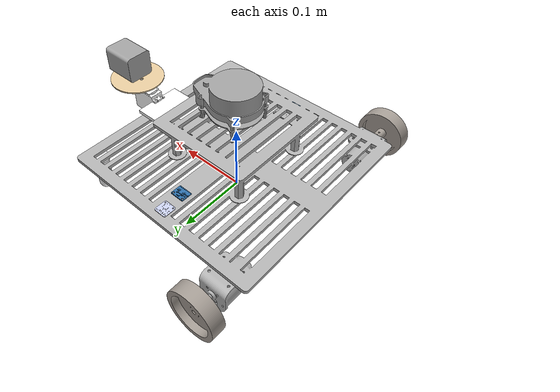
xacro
<?xml version="1.0" ?>
<robot name="test_robot" xmlns:xacro="http://www.ros.org/wiki/xacro">

<xacro:include filename="$(find test_robot_description)/urdf/materials.xacro" />
<xacro:include filename="$(find test_robot_description)/urdf/test_robot.trans" />
<xacro:include filename="$(find test_robot_description)/urdf/test_robot.gazebo" />
<link name="base_link">
  <inertial>
    <origin xyz="-0.017478616142263866 -0.0026167214840721615 0.07232033801694401" rpy="0 0 0"/>
    <mass value="1.7085553050360842"/>
    <inertia ixx="0.01599" iyy="0.013053" izz="0.025491" ixy="1e-06" iyz="0.0" ixz="-0.001461"/>
  </inertial>
  <visual>
    <origin xyz="0 0 0" rpy="0 0 0"/>
    <geometry>
      <mesh filename="package://test_robot_description/meshes/base_link.stl" scale="0.001 0.001 0.001"/>
    </geometry>
    <material name="silver_default"/>
  </visual>
  <collision>
    <origin xyz="0 0 0" rpy="0 0 0"/>
    <geometry>
      <mesh filename="package://test_robot_description/meshes/base_link.stl" scale="0.001 0.001 0.001"/>
    </geometry>
  </collision>
</link>

<link name="right_wheel_1">
  <inertial>
    <origin xyz="2.1362899985111206e-07 -0.007315609570886977 -4.197731875744959e-06" rpy="0 0 0"/>
    <mass value="0.04524129578745742"/>
    <inertia ixx="2.1e-05" iyy="3.8e-05" izz="2.1e-05" ixy="-0.0" iyz="0.0" ixz="-0.0"/>
  </inertial>
  <visual>
    <origin xyz="0.113229 0.188571 -0.035" rpy="0 0 0"/>
    <geometry>
      <mesh filename="package://test_robot_description/meshes/right_wheel_1.stl" scale="0.001 0.001 0.001"/>
    </geometry>
    <material name="opaque166158150"/>
  </visual>
  <collision>
    <origin xyz="0.113229 0.188571 -0.035" rpy="0 0 0"/>
    <geometry>
      <mesh filename="package://test_robot_description/meshes/right_wheel_1.stl" scale="0.001 0.001 0.001"/>
    </geometry>
  </collision>
</link>

<link name="left_wheel_1">
  <inertial>
    <origin xyz="-1.0235613107090202e-07 0.0073161666027419525 3.864337691943109e-06" rpy="0 0 0"/>
    <mass value="0.04524129578745742"/>
    <inertia ixx="2.1e-05" iyy="3.8e-05" izz="2.1e-05" ixy="0.0" iyz="0.0" ixz="0.0"/>
  </inertial>
  <visual>
    <origin xyz="0.113264 -0.183337 -0.035" rpy="0 0 0"/>
    <geometry>
      <mesh filename="package://test_robot_description/meshes/left_wheel_1.stl" scale="0.001 0.001 0.001"/>
    </geometry>
    <material name="opaque166158150"/>
  </visual>
  <collision>
    <origin xyz="0.113264 -0.183337 -0.035" rpy="0 0 0"/>
    <geometry>
      <mesh filename="package://test_robot_description/meshes/left_wheel_1.stl" scale="0.001 0.001 0.001"/>
    </geometry>
  </collision>
</link>

<link name="left_castor_1">
  <inertial>
    <origin xyz="-0.015000444363654358 -0.01999972148407214 -0.025454061421393268" rpy="0 0 0"/>
    <mass value="0.04403091329657134"/>
    <inertia ixx="1.1e-05" iyy="1.1e-05" izz="2e-06" ixy="0.0" iyz="-0.0" ixz="0.0"/>
  </inertial>
  <visual>
    <origin xyz="-0.150554 -0.144783 -0.05468" rpy="0 0 0"/>
    <geometry>
      <mesh filename="package://test_robot_description/meshes/left_castor_1.stl" scale="0.001 0.001 0.001"/>
    </geometry>
    <material name="aluminum_satin"/>
  </visual>
  <collision>
    <origin xyz="-0.150554 -0.144783 -0.05468" rpy="0 0 0"/>
    <geometry>
      <mesh filename="package://test_robot_description/meshes/left_castor_1.stl" scale="0.001 0.001 0.001"/>
    </geometry>
  </collision>
</link>

<link name="right_castor_1">
  <inertial>
    <origin xyz="-0.015000444363654053 0.02000027851592795 -0.02545406142139353" rpy="0 0 0"/>
    <mass value="0.04403091329657134"/>
    <inertia ixx="1.1e-05" iyy="1.1e-05" izz="2e-06" ixy="-0.0" iyz="0.0" ixz="0.0"/>
  </inertial>
  <visual>
    <origin xyz="-0.150554 0.150017 -0.05468" rpy="0 0 0"/>
    <geometry>
      <mesh filename="package://test_robot_description/meshes/right_castor_1.stl" scale="0.001 0.001 0.001"/>
    </geometry>
    <material name="aluminum_satin"/>
  </visual>
  <collision>
    <origin xyz="-0.150554 0.150017 -0.05468" rpy="0 0 0"/>
    <geometry>
      <mesh filename="package://test_robot_description/meshes/right_castor_1.stl" scale="0.001 0.001 0.001"/>
    </geometry>
  </collision>
</link>

<link name="ydlidar_x4_1">
  <inertial>
    <origin xyz="0.008293655206743676 2.7851592755744406e-07 0.03420114222279125" rpy="0 0 0"/>
    <mass value="1.1515616542314233"/>
    <inertia ixx="0.000489" iyy="0.000861" izz="0.000987" ixy="-0.0" iyz="-0.0" ixz="0.000148"/>
  </inertial>
  <visual>
    <origin xyz="-0.003154 0.002617 -0.11668" rpy="0 0 0"/>
    <geometry>
      <mesh filename="package://test_robot_description/meshes/ydlidar_x4_1.stl" scale="0.001 0.001 0.001"/>
    </geometry>
    <material name="steel_satin"/>
  </visual>
  <collision>
    <origin xyz="-0.003154 0.002617 -0.11668" rpy="0 0 0"/>
    <geometry>
      <mesh filename="package://test_robot_description/meshes/ydlidar_x4_1.stl" scale="0.001 0.001 0.001"/>
    </geometry>
  </collision>
</link>

<link name="servo_mount_1">
  <inertial>
    <origin xyz="0.02281000003141173 2.76966477701264e-07 -0.002692668094140295" rpy="0 0 0"/>
    <mass value="0.28990445760104805"/>
    <inertia ixx="5.9e-05" iyy="0.00017" izz="0.000152" ixy="0.0" iyz="-0.0" ixz="6e-06"/>
  </inertial>
  <visual>
    <origin xyz="-0.155554 0.002617 -0.05968" rpy="0 0 0"/>
    <geometry>
      <mesh filename="package://test_robot_description/meshes/servo_mount_1.stl" scale="0.001 0.001 0.001"/>
    </geometry>
    <material name="acrylic_clear"/>
  </visual>
  <collision>
    <origin xyz="-0.155554 0.002617 -0.05968" rpy="0 0 0"/>
    <geometry>
      <mesh filename="package://test_robot_description/meshes/servo_mount_1.stl" scale="0.001 0.001 0.001"/>
    </geometry>
  </collision>
</link>

<link name="camera_mount_1">
  <inertial>
    <origin xyz="0.009999555636422408 2.7851592789528146e-07 0.0029999999999999333" rpy="0 0 0"/>
    <mass value="0.012966923677691866"/>
    <inertia ixx="5e-06" iyy="5e-06" izz="1e-05" ixy="0.0" iyz="-0.0" ixz="0.0"/>
  </inertial>
  <visual>
    <origin xyz="-0.193704 0.002617 -0.08223" rpy="0 0 0"/>
    <geometry>
      <mesh filename="package://test_robot_description/meshes/camera_mount_1.stl" scale="0.001 0.001 0.001"/>
    </geometry>
    <material name="paek_beige"/>
  </visual>
  <collision>
    <origin xyz="-0.193704 0.002617 -0.08223" rpy="0 0 0"/>
    <geometry>
      <mesh filename="package://test_robot_description/meshes/camera_mount_1.stl" scale="0.001 0.001 0.001"/>
    </geometry>
  </collision>
</link>

<link name="camera_1">
  <inertial>
    <origin xyz="0.003869648083968641 2.7851593102558997e-07 0.022445900256365517" rpy="0 0 0"/>
    <mass value="0.6054290756769216"/>
    <inertia ixx="0.000158" iyy="0.000199" izz="0.000199" ixy="-0.0" iyz="0.0" ixz="-0.0"/>
  </inertial>
  <visual>
    <origin xyz="-0.213704 0.002617 -0.08623" rpy="0 0 0"/>
    <geometry>
      <mesh filename="package://test_robot_description/meshes/camera_1.stl" scale="0.001 0.001 0.001"/>
    </geometry>
    <material name="steel_satin"/>
  </visual>
  <collision>
    <origin xyz="-0.213704 0.002617 -0.08623" rpy="0 0 0"/>
    <geometry>
      <mesh filename="package://test_robot_description/meshes/camera_1.stl" scale="0.001 0.001 0.001"/>
    </geometry>
  </collision>
</link>

<link name="MPU_6050_1">
  <inertial>
    <origin xyz="-5.851215794284645e-05 -0.049957645733138184 0.0012967230186990211" rpy="0 0 0"/>
    <mass value="0.0012652929782472168"/>
    <inertia ixx="0.0" iyy="0.0" izz="0.0" ixy="-0.0" iyz="-0.0" ixz="0.0"/>
  </inertial>
  <visual>
    <origin xyz="-0.003154 -0.149783 -0.05968" rpy="0 0 0"/>
    <geometry>
      <mesh filename="package://test_robot_description/meshes/MPU_6050_1.stl" scale="0.001 0.001 0.001"/>
    </geometry>
    <material name="plastic_glossy_blue"/>
  </visual>
  <collision>
    <origin xyz="-0.003154 -0.149783 -0.05968" rpy="0 0 0"/>
    <geometry>
      <mesh filename="package://test_robot_description/meshes/MPU_6050_1.stl" scale="0.001 0.001 0.001"/>
    </geometry>
  </collision>
</link>

<link name="ADXL335_1">
  <inertial>
    <origin xyz="4.56818678628481e-05 -0.025102579053233917 0.00043846778310281664" rpy="0 0 0"/>
    <mass value="0.000372404165087121"/>
    <inertia ixx="0.0" iyy="0.0" izz="0.0" ixy="0.0" iyz="0.0" ixz="-0.0"/>
  </inertial>
  <visual>
    <origin xyz="-0.003154 -0.149783 -0.05968" rpy="0 0 0"/>
    <geometry>
      <mesh filename="package://test_robot_description/meshes/ADXL335_1.stl" scale="0.001 0.001 0.001"/>
    </geometry>
    <material name="opaque202209238"/>
  </visual>
  <collision>
    <origin xyz="-0.003154 -0.149783 -0.05968" rpy="0 0 0"/>
    <geometry>
      <mesh filename="package://test_robot_description/meshes/ADXL335_1.stl" scale="0.001 0.001 0.001"/>
    </geometry>
  </collision>
</link>

<link name="MPU_9250_1">
  <inertial>
    <origin xyz="-5.2641964672283e-05 0.04998372466373088 0.0010604641626403774" rpy="0 0 0"/>
    <mass value="0.0010620476629708976"/>
    <inertia ixx="0.0" iyy="0.0" izz="0.0" ixy="-0.0" iyz="-0.0" ixz="0.0"/>
  </inertial>
  <visual>
    <origin xyz="-0.003154 0.155017 -0.05968" rpy="0 0 0"/>
    <geometry>
      <mesh filename="package://test_robot_description/meshes/MPU_9250_1.stl" scale="0.001 0.001 0.001"/>
    </geometry>
    <material name="silver_default"/>
  </visual>
  <collision>
    <origin xyz="-0.003154 0.155017 -0.05968" rpy="0 0 0"/>
    <geometry>
      <mesh filename="package://test_robot_description/meshes/MPU_9250_1.stl" scale="0.001 0.001 0.001"/>
    </geometry>
  </collision>
</link>

<link name="QMC5883_1">
  <inertial>
    <origin xyz="0.00015378992721355603 0.024161721167240524 0.0011473923879169318" rpy="0 0 0"/>
    <mass value="0.0005645426363999118"/>
    <inertia ixx="0.0" iyy="0.0" izz="0.0" ixy="0.0" iyz="0.0" ixz="-0.0"/>
  </inertial>
  <visual>
    <origin xyz="-0.003154 0.155017 -0.05968" rpy="0 0 0"/>
    <geometry>
      <mesh filename="package://test_robot_description/meshes/QMC5883_1.stl" scale="0.001 0.001 0.001"/>
    </geometry>
    <material name="plastic_glossy_blue"/>
  </visual>
  <collision>
    <origin xyz="-0.003154 0.155017 -0.05968" rpy="0 0 0"/>
    <geometry>
      <mesh filename="package://test_robot_description/meshes/QMC5883_1.stl" scale="0.001 0.001 0.001"/>
    </geometry>
  </collision>
</link>

<joint name="right_drive" type="continuous">
  <origin xyz="-0.113229 -0.188571 0.035" rpy="0 0 0"/>
  <parent link="base_link"/>
  <child link="right_wheel_1"/>
  <axis xyz="0.0 -1.0 -0.0"/>
</joint>

<joint name="left_drive" type="continuous">
  <origin xyz="-0.113264 0.183337 0.035" rpy="0 0 0"/>
  <parent link="base_link"/>
  <child link="left_wheel_1"/>
  <axis xyz="-0.0 1.0 0.0"/>
</joint>

<joint name="Rigid 3" type="fixed">
  <origin xyz="0.150554 0.144783 0.05468" rpy="0 0 0"/>
  <parent link="base_link"/>
  <child link="left_castor_1"/>
</joint>

<joint name="Rigid 4" type="fixed">
  <origin xyz="0.150554 -0.150017 0.05468" rpy="0 0 0"/>
  <parent link="base_link"/>
  <child link="right_castor_1"/>
</joint>

<joint name="Rigid 5" type="fixed">
  <origin xyz="0.003154 -0.002617 0.11668" rpy="0 0 0"/>
  <parent link="base_link"/>
  <child link="ydlidar_x4_1"/>
</joint>

<joint name="Rigid 6" type="fixed">
  <origin xyz="0.155554 -0.002617 0.05968" rpy="0 0 0"/>
  <parent link="base_link"/>
  <child link="servo_mount_1"/>
</joint>

<joint name="camera_joint" type="continuous">
  <origin xyz="0.03815 0.0 0.02255" rpy="0 0 0"/>
  <parent link="servo_mount_1"/>
  <child link="camera_mount_1"/>
  <axis xyz="0.0 -0.0 1.0"/>
</joint>

<joint name="Rigid 9" type="fixed">
  <origin xyz="0.02 0.0 0.004" rpy="0 0 0"/>
  <parent link="camera_mount_1"/>
  <child link="camera_1"/>
</joint>

<joint name="Rigid 10" type="fixed">
  <origin xyz="0.003154 0.149783 0.05968" rpy="0 0 0"/>
  <parent link="base_link"/>
  <child link="MPU_6050_1"/>
</joint>

<joint name="Rigid 11" type="fixed">
  <origin xyz="0.003154 0.149783 0.05968" rpy="0 0 0"/>
  <parent link="base_link"/>
  <child link="ADXL335_1"/>
</joint>

<joint name="Rigid 12" type="fixed">
  <origin xyz="0.003154 -0.155017 0.05968" rpy="0 0 0"/>
  <parent link="base_link"/>
  <child link="MPU_9250_1"/>
</joint>

<joint name="Rigid 13" type="fixed">
  <origin xyz="0.003154 -0.155017 0.05968" rpy="0 0 0"/>
  <parent link="base_link"/>
  <child link="QMC5883_1"/>
</joint>

</robot>

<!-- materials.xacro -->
<robot name="test_robot" xmlns:xacro="http://www.ros.org/wiki/xacro" >

<material name="silver_default">
  <color rgba="0.700 0.700 0.700 1.000"/>
</material>
<material name="opaque166158150">
  <color rgba="0.6509803921568628 0.6196078431372549 0.5882352941176471 1.0"/>
</material>
<material name="aluminum_satin">
  <color rgba="0.9607843137254902 0.9607843137254902 0.9647058823529412 1.0"/>
</material>
<material name="steel_satin">
  <color rgba="0.6274509803921569 0.6274509803921569 0.6274509803921569 1.0"/>
</material>
<material name="acrylic_clear">
  <color rgba="1.0 1.0 1.0 1.0"/>
</material>
<material name="paek_beige">
  <color rgba="0.8980392156862745 0.792156862745098 0.6196078431372549 1.0"/>
</material>
<material name="plastic_glossy_blue">
  <color rgba="0.1803921568627451 0.4392156862745098 0.6666666666666666 1.0"/>
</material>
<material name="opaque202209238">
  <color rgba="0.792156862745098 0.8196078431372549 0.9333333333333333 1.0"/>
</material>

</robot>

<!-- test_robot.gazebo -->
<robot name="test_robot" xmlns:xacro="http://www.ros.org/wiki/xacro" >

<xacro:property name="body_color" value="Gazebo/Silver" />

<gazebo>
  <plugin name="control" filename="libgazebo_ros_control.so"/>
</gazebo>
<gazebo reference="base_link">
  <material>${body_color}</material>
  <mu1>0.2</mu1>
  <mu2>0.2</mu2>
  <selfCollide>true</selfCollide>
  <gravity>true</gravity>
</gazebo>

<gazebo reference="right_wheel_1">
  <material>${body_color}</material>
  <mu1>0.2</mu1>
  <mu2>0.2</mu2>
  <selfCollide>true</selfCollide>
</gazebo>

<gazebo reference="left_wheel_1">
  <material>${body_color}</material>
  <mu1>0.2</mu1>
  <mu2>0.2</mu2>
  <selfCollide>true</selfCollide>
</gazebo>

<gazebo reference="left_castor_1">
  <material>${body_color}</material>
  <mu1>0.2</mu1>
  <mu2>0.2</mu2>
  <selfCollide>true</selfCollide>
</gazebo>

<gazebo reference="right_castor_1">
  <material>${body_color}</material>
  <mu1>0.2</mu1>
  <mu2>0.2</mu2>
  <selfCollide>true</selfCollide>
</gazebo>

<gazebo reference="ydlidar_x4_1">
  <material>${body_color}</material>
  <mu1>0.2</mu1>
  <mu2>0.2</mu2>
  <selfCollide>true</selfCollide>
</gazebo>

<gazebo reference="servo_mount_1">
  <material>${body_color}</material>
  <mu1>0.2</mu1>
  <mu2>0.2</mu2>
  <selfCollide>true</selfCollide>
</gazebo>

<gazebo reference="camera_mount_1">
  <material>${body_color}</material>
  <mu1>0.2</mu1>
  <mu2>0.2</mu2>
  <selfCollide>true</selfCollide>
</gazebo>

<gazebo reference="camera_1">
  <material>${body_color}</material>
  <mu1>0.2</mu1>
  <mu2>0.2</mu2>
  <selfCollide>true</selfCollide>
</gazebo>

<gazebo reference="MPU_6050_1">
  <material>${body_color}</material>
  <mu1>0.2</mu1>
  <mu2>0.2</mu2>
  <selfCollide>true</selfCollide>
</gazebo>

<gazebo reference="ADXL335_1">
  <material>${body_color}</material>
  <mu1>0.2</mu1>
  <mu2>0.2</mu2>
  <selfCollide>true</selfCollide>
</gazebo>

<gazebo reference="MPU_9250_1">
  <material>${body_color}</material>
  <mu1>0.2</mu1>
  <mu2>0.2</mu2>
  <selfCollide>true</selfCollide>
</gazebo>

<gazebo reference="QMC5883_1">
  <material>${body_color}</material>
  <mu1>0.2</mu1>
  <mu2>0.2</mu2>
  <selfCollide>true</selfCollide>
</gazebo>

</robot>
